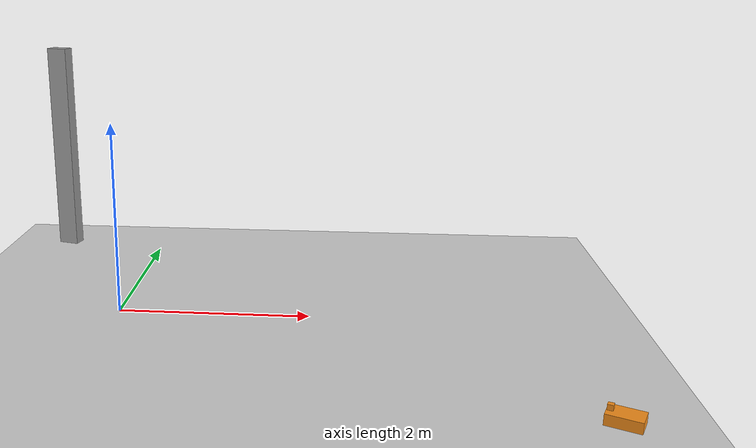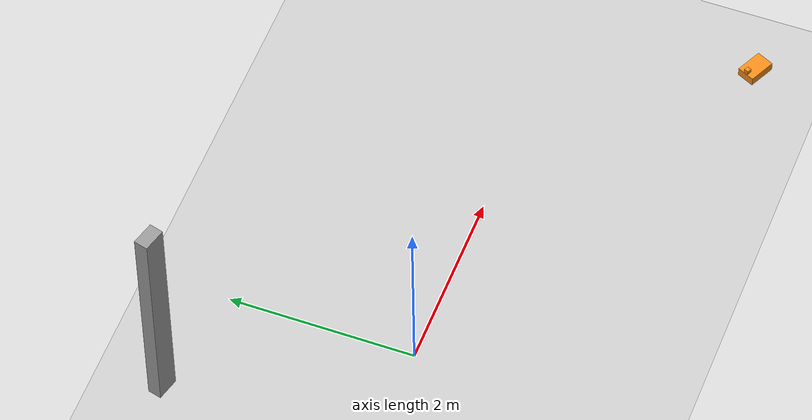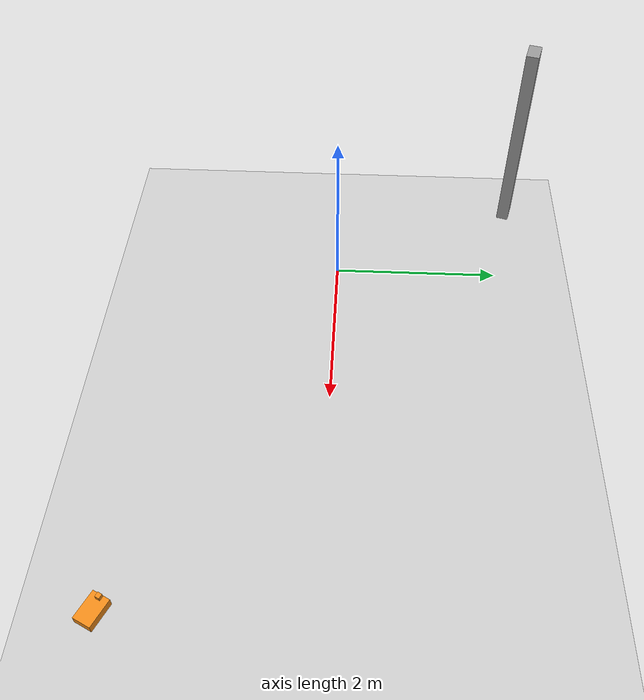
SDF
<sdf version="1.7">
 <world name="default">
  <light name="sun" type="directional">
   <pose>0 0 10 0 -0 0</pose>
   <diffuse>0.8 0.8 0.8 1</diffuse>
   <specular>0.2 0.2 0.2 1</specular>
   <attenuation>
    <range>1000</range>
    <constant>0.9</constant>
    <linear>0.01</linear>
    <quadratic>0.001</quadratic>
   </attenuation>
   <direction>-0.5 0.1 -0.9</direction>
   <spot><inner_angle>0</inner_angle><outer_angle>0</outer_angle><falloff>0</falloff></spot>
  </light>
  <model name="ground_plane">
   <static>1</static>
   <link name="link">
    <collision name="collision">
     <geometry><plane><normal>0 0 1</normal><size>100 100</size></plane></geometry>
     <surface><friction><ode><mu>100</mu><mu2>50</mu2></ode></friction></surface>
    </collision>
    <visual name="visual">
     <cast_shadows>0</cast_shadows>
     <geometry><plane><normal>0 0 1</normal><size>100 100</size></plane></geometry>
     <material>
      <script><uri>file://media/materials/scripts/gazebo.material</uri><name>Gazebo/Grey</name></script>
     </material>
    </visual>
   </link>
  </model>
  <gravity>0 0 -9.8</gravity>
  <magnetic_field>6e-06 2.3e-05 -4.2e-05</magnetic_field>
  <atmosphere type="adiabatic"/>
  <physics type="ode">
   <max_step_size>0.001</max_step_size>
   <real_time_factor>1</real_time_factor>
   <real_time_update_rate>1000</real_time_update_rate>
  </physics>
  <scene><ambient>0.4 0.4 0.4 1</ambient><background>0.7 0.7 0.7 1</background><shadows>1</shadows></scene>
  <audio><device>default</device></audio>
  <spherical_coordinates>
   <surface_model>EARTH_WGS84</surface_model>
   <latitude_deg>0</latitude_deg>
   <longitude_deg>0</longitude_deg>
   <elevation>0</elevation>
   <heading_deg>0</heading_deg>
  </spherical_coordinates>
  <model name="RMUL25.world">
   <pose>-0.14141 0.00989 0 0 -0 0</pose>
   <link name="Wall_10">
    <collision name="Wall_10_Collision">
     <geometry><box><size>0.25 0.15 2.5</size></box></geometry>
     <pose>0 0 1.25 0 -0 0</pose>
    </collision>
    <visual name="Wall_10_Visual">
     <pose>0 0 1.25 0 -0 0</pose>
     <geometry><box><size>0.25 0.15 2.5</size></box></geometry>
     <material>
      <script><uri>file://media/materials/scripts/gazebo.material</uri><name>Gazebo/Grey</name></script>
      <ambient>1 1 1 1</ambient>
     </material>
     <meta><layer>0</layer></meta>
    </visual>
    <pose>-1.08048 2.22004 0 0 -0 -0.261799</pose>
   </link>
   <static>1</static>
  </model>
  <model name="robot">
   <pose>4.60989 -2.07308 0.06 3e-06 2e-06 2.6967</pose>
   <link name="dummy">
    <inertial>
     <pose>0.000146 0 0.000152 0 -0 0</pose>
     <mass>8.21</mass>
     <inertia>
      <ixx>0.0101571</ixx>
      <ixy>0</ixy>
      <ixz>-0.000149817</ixz>
      <iyy>0.0103009</iyy>
      <iyz>0</iyz>
      <izz>0.0101448</izz>
     </inertia>
    </inertial>
    <collision name="dummy_fixed_joint_lump__base_link_collision">
     <pose>0 0 0.05 0 -0 1.5708</pose>
     <geometry><box><size>0.2 0.3 0.1</size></box></geometry>
    </collision>
    <collision name="dummy_fixed_joint_lump__imu_link_collision_1">
     <pose>0.12 0 0.125 0 -0 0</pose>
     <geometry><box><size>0.05 0.05 0.05</size></box></geometry>
    </collision>
    <visual name="dummy_fixed_joint_lump__base_link_visual">
     <pose>0 0 0.05 0 -0 1.5708</pose>
     <geometry><box><size>0.2 0.3 0.1</size></box></geometry>
     <material>
      <script><name>Gazebo/Orange</name><uri>file://media/materials/scripts/gazebo.material</uri></script>
     </material>
    </visual>
    <visual name="dummy_fixed_joint_lump__imu_link_visual_1">
     <pose>0.12 0 0.125 0 -0 0</pose>
     <geometry><box><size>0.05 0.05 0.05</size></box></geometry>
     <material>
      <script><uri>file://media/materials/scripts/gazebo.material</uri><name>Gazebo/Orange</name></script>
     </material>
    </visual>
   </link>
  </model>
 </world>
</sdf>
